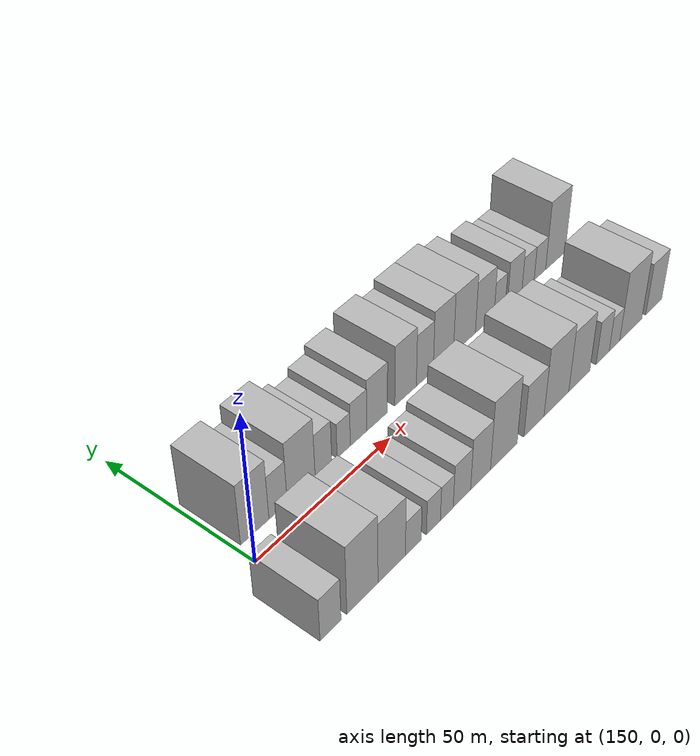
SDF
<sdf version="1.6">
 <world name="default">
  <model name="building_17">
   <static>1</static>
   <pose>156.5097 16.0000 0 0.000000 0.000000 1.570796</pose>
   <link name="link">
    <pose>0 0 10.50 0 0 0</pose>
    <collision name="collision"><geometry><box><size>20.0000 9.9241 21.0000</size></box></geometry></collision>
    <visual name="visual">
     <cast_shadows>0</cast_shadows>
     <geometry><box><size>20.0000 9.9241 21.0000</size></box></geometry>
     <material>
      <script>
       <uri>model://HANNAS_wall/materials/scripts</uri>
       <uri>model://HANNAS_wall/materials/textures</uri>
       <name>vrc/HANNAS_wall</name>
      </script>
     </material>
    </visual>
   </link>
  </model>
  <model name="building_18">
   <static>1</static>
   <pose>164.7365 16.0000 0 0.000000 0.000000 1.570796</pose>
   <link name="link">
    <pose>0 0 7.50 0 0 0</pose>
    <collision name="collision"><geometry><box><size>20.0000 6.5295 15.0000</size></box></geometry></collision>
    <visual name="visual">
     <cast_shadows>0</cast_shadows>
     <geometry><box><size>20.0000 6.5295 15.0000</size></box></geometry>
     <material>
      <script>
       <uri>model://HANNAS_wall/materials/scripts</uri>
       <uri>model://HANNAS_wall/materials/textures</uri>
       <name>vrc/HANNAS_wall</name>
      </script>
     </material>
    </visual>
   </link>
  </model>
  <model name="building_19">
   <static>1</static>
   <pose>173.1474 16.0000 0 0.000000 0.000000 1.570796</pose>
   <link name="link">
    <pose>0 0 10.50 0 0 0</pose>
    <collision name="collision"><geometry><box><size>20.0000 10.2923 21.0000</size></box></geometry></collision>
    <visual name="visual">
     <cast_shadows>0</cast_shadows>
     <geometry><box><size>20.0000 10.2923 21.0000</size></box></geometry>
     <material>
      <script>
       <uri>model://HANNAS_wall/materials/scripts</uri>
       <uri>model://HANNAS_wall/materials/textures</uri>
       <name>vrc/HANNAS_wall</name>
      </script>
     </material>
    </visual>
   </link>
  </model>
  <model name="building_20">
   <static>1</static>
   <pose>181.4488 16.0000 0 0.000000 0.000000 1.570796</pose>
   <link name="link">
    <pose>0 0 7.50 0 0 0</pose>
    <collision name="collision"><geometry><box><size>20.0000 6.3106 15.0000</size></box></geometry></collision>
    <visual name="visual">
     <cast_shadows>0</cast_shadows>
     <geometry><box><size>20.0000 6.3106 15.0000</size></box></geometry>
     <material>
      <script>
       <uri>model://HANNAS_wall/materials/scripts</uri>
       <uri>model://HANNAS_wall/materials/textures</uri>
       <name>vrc/HANNAS_wall</name>
      </script>
     </material>
    </visual>
   </link>
  </model>
  <model name="building_21">
   <static>1</static>
   <pose>189.1757 16.0000 0 0.000000 0.000000 1.570796</pose>
   <link name="link">
    <pose>0 0 6.00 0 0 0</pose>
    <collision name="collision"><geometry><box><size>20.0000 5.1431 12.0000</size></box></geometry></collision>
    <visual name="visual">
     <cast_shadows>0</cast_shadows>
     <geometry><box><size>20.0000 5.1431 12.0000</size></box></geometry>
     <material>
      <script>
       <uri>model://HANNAS_wall/materials/scripts</uri>
       <uri>model://HANNAS_wall/materials/textures</uri>
       <name>vrc/HANNAS_wall</name>
      </script>
     </material>
    </visual>
   </link>
  </model>
  <model name="building_22">
   <static>1</static>
   <pose>194.9975 16.0000 0 0.000000 0.000000 1.570796</pose>
   <link name="link">
    <pose>0 0 7.50 0 0 0</pose>
    <collision name="collision"><geometry><box><size>20.0000 6.5005 15.0000</size></box></geometry></collision>
    <visual name="visual">
     <cast_shadows>0</cast_shadows>
     <geometry><box><size>20.0000 6.5005 15.0000</size></box></geometry>
     <material>
      <script>
       <uri>model://HANNAS_wall/materials/scripts</uri>
       <uri>model://HANNAS_wall/materials/textures</uri>
       <name>vrc/HANNAS_wall</name>
      </script>
     </material>
    </visual>
   </link>
  </model>
  <model name="building_23">
   <static>1</static>
   <pose>202.4056 16.0000 0 0.000000 0.000000 1.570796</pose>
   <link name="link">
    <pose>0 0 9.00 0 0 0</pose>
    <collision name="collision"><geometry><box><size>20.0000 8.3157 18.0000</size></box></geometry></collision>
    <visual name="visual">
     <cast_shadows>0</cast_shadows>
     <geometry><box><size>20.0000 8.3157 18.0000</size></box></geometry>
     <material>
      <script>
       <uri>model://HANNAS_wall/materials/scripts</uri>
       <uri>model://HANNAS_wall/materials/textures</uri>
       <name>vrc/HANNAS_wall</name>
      </script>
     </material>
    </visual>
   </link>
  </model>
  <model name="building_24">
   <static>1</static>
   <pose>214.0579 16.0000 0 0.000000 0.000000 1.570796</pose>
   <link name="link">
    <pose>0 0 10.50 0 0 0</pose>
    <collision name="collision"><geometry><box><size>20.0000 8.9889 21.0000</size></box></geometry></collision>
    <visual name="visual">
     <cast_shadows>0</cast_shadows>
     <geometry><box><size>20.0000 8.9889 21.0000</size></box></geometry>
     <material>
      <script>
       <uri>model://HANNAS_wall/materials/scripts</uri>
       <uri>model://HANNAS_wall/materials/textures</uri>
       <name>vrc/HANNAS_wall</name>
      </script>
     </material>
    </visual>
   </link>
  </model>
  <model name="building_25">
   <static>1</static>
   <pose>222.1660 16.0000 0 0.000000 0.000000 1.570796</pose>
   <link name="link">
    <pose>0 0 9.00 0 0 0</pose>
    <collision name="collision"><geometry><box><size>20.0000 7.2274 18.0000</size></box></geometry></collision>
    <visual name="visual">
     <cast_shadows>0</cast_shadows>
     <geometry><box><size>20.0000 7.2274 18.0000</size></box></geometry>
     <material>
      <script>
       <uri>model://HANNAS_wall/materials/scripts</uri>
       <uri>model://HANNAS_wall/materials/textures</uri>
       <name>vrc/HANNAS_wall</name>
      </script>
     </material>
    </visual>
   </link>
  </model>
  <model name="building_26">
   <static>1</static>
   <pose>230.1992 16.0000 0 0.000000 0.000000 1.570796</pose>
   <link name="link">
    <pose>0 0 10.50 0 0 0</pose>
    <collision name="collision"><geometry><box><size>20.0000 8.8390 21.0000</size></box></geometry></collision>
    <visual name="visual">
     <cast_shadows>0</cast_shadows>
     <geometry><box><size>20.0000 8.8390 21.0000</size></box></geometry>
     <material>
      <script>
       <uri>model://HANNAS_wall/materials/scripts</uri>
       <uri>model://HANNAS_wall/materials/textures</uri>
       <name>vrc/HANNAS_wall</name>
      </script>
     </material>
    </visual>
   </link>
  </model>
  <model name="building_27">
   <static>1</static>
   <pose>239.5601 16.0000 0 0.000000 0.000000 1.570796</pose>
   <link name="link">
    <pose>0 0 10.50 0 0 0</pose>
    <collision name="collision"><geometry><box><size>20.0000 9.8829 21.0000</size></box></geometry></collision>
    <visual name="visual">
     <cast_shadows>0</cast_shadows>
     <geometry><box><size>20.0000 9.8829 21.0000</size></box></geometry>
     <material>
      <script>
       <uri>model://HANNAS_wall/materials/scripts</uri>
       <uri>model://HANNAS_wall/materials/textures</uri>
       <name>vrc/HANNAS_wall</name>
      </script>
     </material>
    </visual>
   </link>
  </model>
  <model name="building_28">
   <static>1</static>
   <pose>248.8117 16.0000 0 0.000000 0.000000 1.570796</pose>
   <link name="link">
    <pose>0 0 9.00 0 0 0</pose>
    <collision name="collision"><geometry><box><size>20.0000 8.6202 18.0000</size></box></geometry></collision>
    <visual name="visual">
     <cast_shadows>0</cast_shadows>
     <geometry><box><size>20.0000 8.6202 18.0000</size></box></geometry>
     <material>
      <script>
       <uri>model://HANNAS_wall/materials/scripts</uri>
       <uri>model://HANNAS_wall/materials/textures</uri>
       <name>vrc/HANNAS_wall</name>
      </script>
     </material>
    </visual>
   </link>
  </model>
  <model name="building_29">
   <static>1</static>
   <pose>255.7878 16.0000 0 0.000000 0.000000 1.570796</pose>
   <link name="link">
    <pose>0 0 6.00 0 0 0</pose>
    <collision name="collision"><geometry><box><size>20.0000 5.3321 12.0000</size></box></geometry></collision>
    <visual name="visual">
     <cast_shadows>0</cast_shadows>
     <geometry><box><size>20.0000 5.3321 12.0000</size></box></geometry>
     <material>
      <script>
       <uri>model://HANNAS_wall/materials/scripts</uri>
       <uri>model://HANNAS_wall/materials/textures</uri>
       <name>vrc/HANNAS_wall</name>
      </script>
     </material>
    </visual>
   </link>
  </model>
  <model name="building_30">
   <static>1</static>
   <pose>262.9445 16.0000 0 0.000000 0.000000 1.570796</pose>
   <link name="link">
    <pose>0 0 7.50 0 0 0</pose>
    <collision name="collision"><geometry><box><size>20.0000 6.9812 15.0000</size></box></geometry></collision>
    <visual name="visual">
     <cast_shadows>0</cast_shadows>
     <geometry><box><size>20.0000 6.9812 15.0000</size></box></geometry>
     <material>
      <script>
       <uri>model://HANNAS_wall/materials/scripts</uri>
       <uri>model://HANNAS_wall/materials/textures</uri>
       <name>vrc/HANNAS_wall</name>
      </script>
     </material>
    </visual>
   </link>
  </model>
  <model name="building_31">
   <static>1</static>
   <pose>269.4134 16.0000 0 0.000000 0.000000 1.570796</pose>
   <link name="link">
    <pose>0 0 6.00 0 0 0</pose>
    <collision name="collision"><geometry><box><size>20.0000 5.9566 12.0000</size></box></geometry></collision>
    <visual name="visual">
     <cast_shadows>0</cast_shadows>
     <geometry><box><size>20.0000 5.9566 12.0000</size></box></geometry>
     <material>
      <script>
       <uri>model://HANNAS_wall/materials/scripts</uri>
       <uri>model://HANNAS_wall/materials/textures</uri>
       <name>vrc/HANNAS_wall</name>
      </script>
     </material>
    </visual>
   </link>
  </model>
  <model name="building_32">
   <static>1</static>
   <pose>275.2357 16.0000 0 0.000000 0.000000 1.570796</pose>
   <link name="link">
    <pose>0 0 6.00 0 0 0</pose>
    <collision name="collision"><geometry><box><size>20.0000 5.6882 12.0000</size></box></geometry></collision>
    <visual name="visual">
     <cast_shadows>0</cast_shadows>
     <geometry><box><size>20.0000 5.6882 12.0000</size></box></geometry>
     <material>
      <script>
       <uri>model://HANNAS_wall/materials/scripts</uri>
       <uri>model://HANNAS_wall/materials/textures</uri>
       <name>vrc/HANNAS_wall</name>
      </script>
     </material>
    </visual>
   </link>
  </model>
  <model name="building_33">
   <static>1</static>
   <pose>283.0482 16.0000 0 0.000000 0.000000 1.570796</pose>
   <link name="link">
    <pose>0 0 12.00 0 0 0</pose>
    <collision name="collision"><geometry><box><size>20.0000 9.9367 24.0000</size></box></geometry></collision>
    <visual name="visual">
     <cast_shadows>0</cast_shadows>
     <geometry><box><size>20.0000 9.9367 24.0000</size></box></geometry>
     <material>
      <script>
       <uri>model://HANNAS_wall/materials/scripts</uri>
       <uri>model://HANNAS_wall/materials/textures</uri>
       <name>vrc/HANNAS_wall</name>
      </script>
     </material>
    </visual>
   </link>
  </model>
  <model name="building_49">
   <static>1</static>
   <pose>146.3734 -16.0000 0 0.000000 0.000000 1.570796</pose>
   <link name="link">
    <pose>0 0 7.50 0 0 0</pose>
    <collision name="collision"><geometry><box><size>20.0000 7.2271 15.0000</size></box></geometry></collision>
    <visual name="visual">
     <cast_shadows>0</cast_shadows>
     <geometry><box><size>20.0000 7.2271 15.0000</size></box></geometry>
     <material>
      <script>
       <uri>model://HANNAS_wall/materials/scripts</uri>
       <uri>model://HANNAS_wall/materials/textures</uri>
       <name>vrc/HANNAS_wall</name>
      </script>
     </material>
    </visual>
   </link>
  </model>
  <model name="building_50">
   <static>1</static>
   <pose>157.5464 -16.0000 0 0.000000 0.000000 1.570796</pose>
   <link name="link">
    <pose>0 0 12.00 0 0 0</pose>
    <collision name="collision"><geometry><box><size>20.0000 11.1189 24.0000</size></box></geometry></collision>
    <visual name="visual">
     <cast_shadows>0</cast_shadows>
     <geometry><box><size>20.0000 11.1189 24.0000</size></box></geometry>
     <material>
      <script>
       <uri>model://HANNAS_wall/materials/scripts</uri>
       <uri>model://HANNAS_wall/materials/textures</uri>
       <name>vrc/HANNAS_wall</name>
      </script>
     </material>
    </visual>
   </link>
  </model>
  <model name="building_51">
   <static>1</static>
   <pose>168.1770 -16.0000 0 0.000000 0.000000 1.570796</pose>
   <link name="link">
    <pose>0 0 10.50 0 0 0</pose>
    <collision name="collision"><geometry><box><size>20.0000 10.1422 21.0000</size></box></geometry></collision>
    <visual name="visual">
     <cast_shadows>0</cast_shadows>
     <geometry><box><size>20.0000 10.1422 21.0000</size></box></geometry>
     <material>
      <script>
       <uri>model://HANNAS_wall/materials/scripts</uri>
       <uri>model://HANNAS_wall/materials/textures</uri>
       <name>vrc/HANNAS_wall</name>
      </script>
     </material>
    </visual>
   </link>
  </model>
  <model name="building_52">
   <static>1</static>
   <pose>176.2465 -16.0000 0 0.000000 0.000000 1.570796</pose>
   <link name="link">
    <pose>0 0 6.00 0 0 0</pose>
    <collision name="collision"><geometry><box><size>20.0000 5.9969 12.0000</size></box></geometry></collision>
    <visual name="visual">
     <cast_shadows>0</cast_shadows>
     <geometry><box><size>20.0000 5.9969 12.0000</size></box></geometry>
     <material>
      <script>
       <uri>model://HANNAS_wall/materials/scripts</uri>
       <uri>model://HANNAS_wall/materials/textures</uri>
       <name>vrc/HANNAS_wall</name>
      </script>
     </material>
    </visual>
   </link>
  </model>
  <model name="building_53">
   <static>1</static>
   <pose>183.9677 -16.0000 0 0.000000 0.000000 1.570796</pose>
   <link name="link">
    <pose>0 0 6.00 0 0 0</pose>
    <collision name="collision"><geometry><box><size>20.0000 5.4454 12.0000</size></box></geometry></collision>
    <visual name="visual">
     <cast_shadows>0</cast_shadows>
     <geometry><box><size>20.0000 5.4454 12.0000</size></box></geometry>
     <material>
      <script>
       <uri>model://HANNAS_wall/materials/scripts</uri>
       <uri>model://HANNAS_wall/materials/textures</uri>
       <name>vrc/HANNAS_wall</name>
      </script>
     </material>
    </visual>
   </link>
  </model>
  <model name="building_54">
   <static>1</static>
   <pose>189.2339 -16.0000 0 0.000000 0.000000 1.570796</pose>
   <link name="link">
    <pose>0 0 6.00 0 0 0</pose>
    <collision name="collision"><geometry><box><size>20.0000 5.0870 12.0000</size></box></geometry></collision>
    <visual name="visual">
     <cast_shadows>0</cast_shadows>
     <geometry><box><size>20.0000 5.0870 12.0000</size></box></geometry>
     <material>
      <script>
       <uri>model://HANNAS_wall/materials/scripts</uri>
       <uri>model://HANNAS_wall/materials/textures</uri>
       <name>vrc/HANNAS_wall</name>
      </script>
     </material>
    </visual>
   </link>
  </model>
  <model name="building_55">
   <static>1</static>
   <pose>195.2907 -16.0000 0 0.000000 0.000000 1.570796</pose>
   <link name="link">
    <pose>0 0 7.50 0 0 0</pose>
    <collision name="collision"><geometry><box><size>20.0000 7.0265 15.0000</size></box></geometry></collision>
    <visual name="visual">
     <cast_shadows>0</cast_shadows>
     <geometry><box><size>20.0000 7.0265 15.0000</size></box></geometry>
     <material>
      <script>
       <uri>model://HANNAS_wall/materials/scripts</uri>
       <uri>model://HANNAS_wall/materials/textures</uri>
       <name>vrc/HANNAS_wall</name>
      </script>
     </material>
    </visual>
   </link>
  </model>
  <model name="building_56">
   <static>1</static>
   <pose>202.9043 -16.0000 0 0.000000 0.000000 1.570796</pose>
   <link name="link">
    <pose>0 0 9.00 0 0 0</pose>
    <collision name="collision"><geometry><box><size>20.0000 8.2007 18.0000</size></box></geometry></collision>
    <visual name="visual">
     <cast_shadows>0</cast_shadows>
     <geometry><box><size>20.0000 8.2007 18.0000</size></box></geometry>
     <material>
      <script>
       <uri>model://HANNAS_wall/materials/scripts</uri>
       <uri>model://HANNAS_wall/materials/textures</uri>
       <name>vrc/HANNAS_wall</name>
      </script>
     </material>
    </visual>
   </link>
  </model>
  <model name="building_57">
   <static>1</static>
   <pose>212.7008 -16.0000 0 0.000000 0.000000 1.570796</pose>
   <link name="link">
    <pose>0 0 12.00 0 0 0</pose>
    <collision name="collision"><geometry><box><size>20.0000 11.3923 24.0000</size></box></geometry></collision>
    <visual name="visual">
     <cast_shadows>0</cast_shadows>
     <geometry><box><size>20.0000 11.3923 24.0000</size></box></geometry>
     <material>
      <script>
       <uri>model://HANNAS_wall/materials/scripts</uri>
       <uri>model://HANNAS_wall/materials/textures</uri>
       <name>vrc/HANNAS_wall</name>
      </script>
     </material>
    </visual>
   </link>
  </model>
  <model name="building_58">
   <static>1</static>
   <pose>225.8445 -16.0000 0 0.000000 0.000000 1.570796</pose>
   <link name="link">
    <pose>0 0 9.00 0 0 0</pose>
    <collision name="collision"><geometry><box><size>20.0000 8.8952 18.0000</size></box></geometry></collision>
    <visual name="visual">
     <cast_shadows>0</cast_shadows>
     <geometry><box><size>20.0000 8.8952 18.0000</size></box></geometry>
     <material>
      <script>
       <uri>model://HANNAS_wall/materials/scripts</uri>
       <uri>model://HANNAS_wall/materials/textures</uri>
       <name>vrc/HANNAS_wall</name>
      </script>
     </material>
    </visual>
   </link>
  </model>
  <model name="building_59">
   <static>1</static>
   <pose>235.9710 -16.0000 0 0.000000 0.000000 1.570796</pose>
   <link name="link">
    <pose>0 0 12.00 0 0 0</pose>
    <collision name="collision"><geometry><box><size>20.0000 11.3577 24.0000</size></box></geometry></collision>
    <visual name="visual">
     <cast_shadows>0</cast_shadows>
     <geometry><box><size>20.0000 11.3577 24.0000</size></box></geometry>
     <material>
      <script>
       <uri>model://HANNAS_wall/materials/scripts</uri>
       <uri>model://HANNAS_wall/materials/textures</uri>
       <name>vrc/HANNAS_wall</name>
      </script>
     </material>
    </visual>
   </link>
  </model>
  <model name="building_60">
   <static>1</static>
   <pose>246.6496 -16.0000 0 0.000000 0.000000 1.570796</pose>
   <link name="link">
    <pose>0 0 10.50 0 0 0</pose>
    <collision name="collision"><geometry><box><size>20.0000 9.9995 21.0000</size></box></geometry></collision>
    <visual name="visual">
     <cast_shadows>0</cast_shadows>
     <geometry><box><size>20.0000 9.9995 21.0000</size></box></geometry>
     <material>
      <script>
       <uri>model://HANNAS_wall/materials/scripts</uri>
       <uri>model://HANNAS_wall/materials/textures</uri>
       <name>vrc/HANNAS_wall</name>
      </script>
     </material>
    </visual>
   </link>
  </model>
  <model name="building_61">
   <static>1</static>
   <pose>257.8524 -16.0000 0 0.000000 0.000000 1.570796</pose>
   <link name="link">
    <pose>0 0 7.50 0 0 0</pose>
    <collision name="collision"><geometry><box><size>20.0000 6.4060 15.0000</size></box></geometry></collision>
    <visual name="visual">
     <cast_shadows>0</cast_shadows>
     <geometry><box><size>20.0000 6.4060 15.0000</size></box></geometry>
     <material>
      <script>
       <uri>model://HANNAS_wall/materials/scripts</uri>
       <uri>model://HANNAS_wall/materials/textures</uri>
       <name>vrc/HANNAS_wall</name>
      </script>
     </material>
    </visual>
   </link>
  </model>
  <model name="building_62">
   <static>1</static>
   <pose>263.6656 -16.0000 0 0.000000 0.000000 1.570796</pose>
   <link name="link">
    <pose>0 0 6.00 0 0 0</pose>
    <collision name="collision"><geometry><box><size>20.0000 5.2204 12.0000</size></box></geometry></collision>
    <visual name="visual">
     <cast_shadows>0</cast_shadows>
     <geometry><box><size>20.0000 5.2204 12.0000</size></box></geometry>
     <material>
      <script>
       <uri>model://HANNAS_wall/materials/scripts</uri>
       <uri>model://HANNAS_wall/materials/textures</uri>
       <name>vrc/HANNAS_wall</name>
      </script>
     </material>
    </visual>
   </link>
  </model>
  <model name="building_63">
   <static>1</static>
   <pose>271.9209 -16.0000 0 0.000000 0.000000 1.570796</pose>
   <link name="link">
    <pose>0 0 12.00 0 0 0</pose>
    <collision name="collision"><geometry><box><size>20.0000 11.2901 24.0000</size></box></geometry></collision>
    <visual name="visual">
     <cast_shadows>0</cast_shadows>
     <geometry><box><size>20.0000 11.2901 24.0000</size></box></geometry>
     <material>
      <script>
       <uri>model://HANNAS_wall/materials/scripts</uri>
       <uri>model://HANNAS_wall/materials/textures</uri>
       <name>vrc/HANNAS_wall</name>
      </script>
     </material>
    </visual>
   </link>
  </model>
  <model name="building_64">
   <static>1</static>
   <pose>283.7841 -16.0000 0 0.000000 0.000000 1.570796</pose>
   <link name="link">
    <pose>0 0 9.00 0 0 0</pose>
    <collision name="collision"><geometry><box><size>20.0000 8.4363 18.0000</size></box></geometry></collision>
    <visual name="visual">
     <cast_shadows>0</cast_shadows>
     <geometry><box><size>20.0000 8.4363 18.0000</size></box></geometry>
     <material>
      <script>
       <uri>model://HANNAS_wall/materials/scripts</uri>
       <uri>model://HANNAS_wall/materials/textures</uri>
       <name>vrc/HANNAS_wall</name>
      </script>
     </material>
    </visual>
   </link>
  </model>
 </world>
</sdf>
